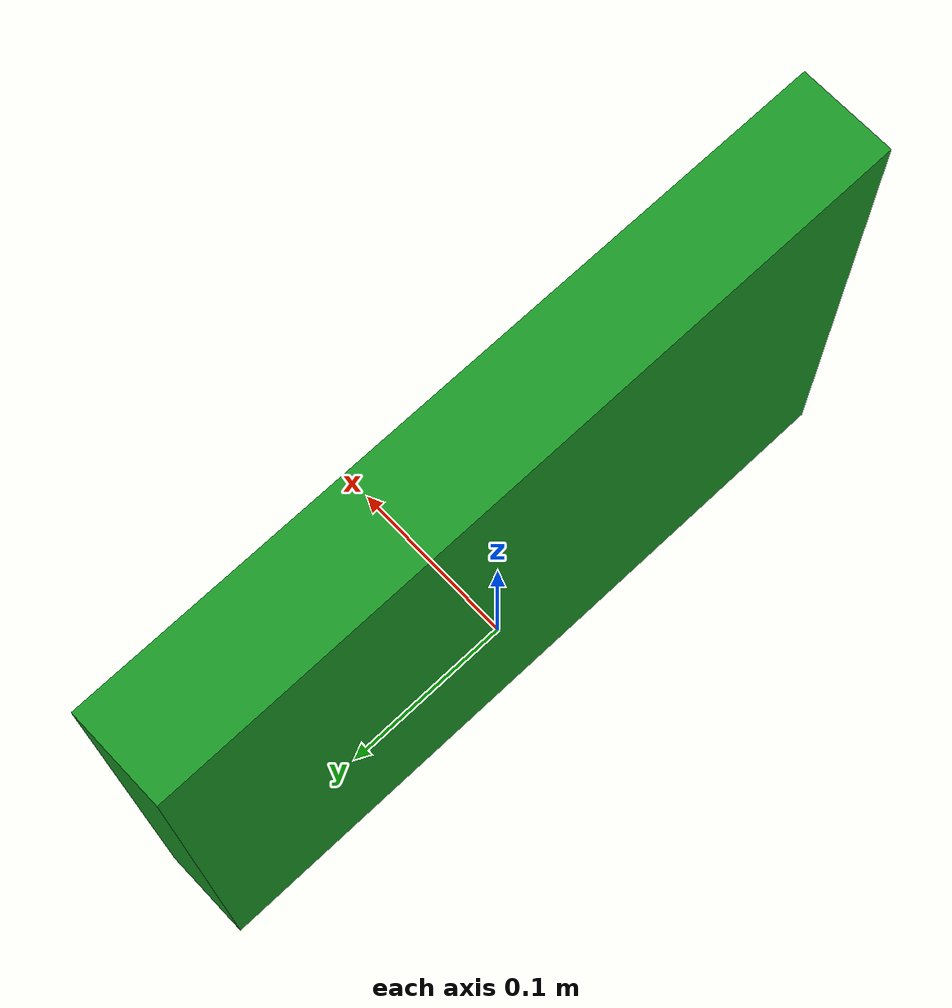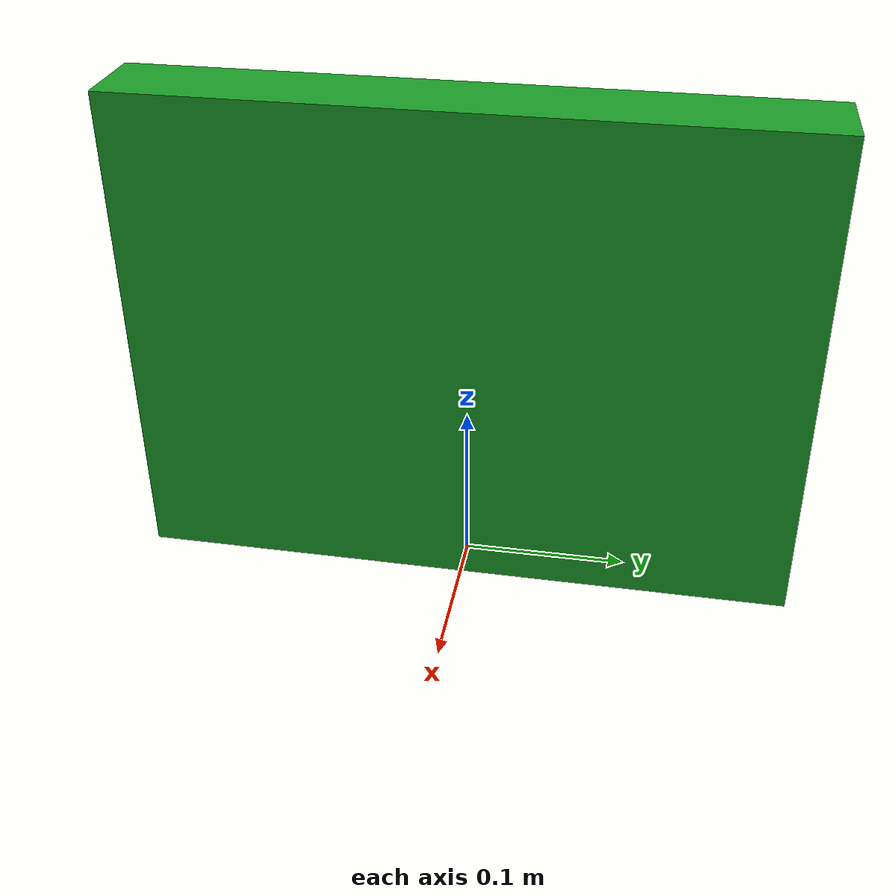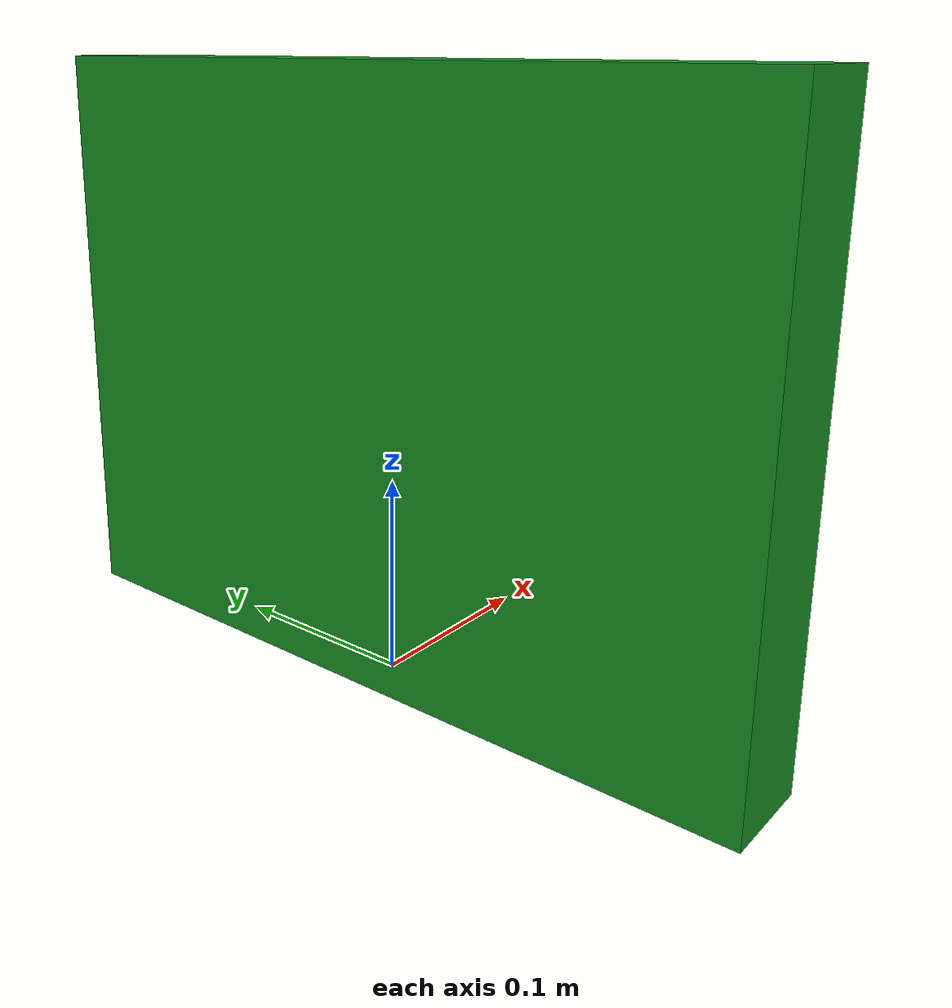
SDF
<?xml version="1.0"?>
<sdf version="1.6">
  <model name="charging_dock">
    <static>true</static>
    <link name="link">
      <collision name="pad_collision">
        <pose>0 0 0.15 0 0 0</pose>
        <geometry>
          <box>
            <size>0.05 0.4 0.3</size>
          </box>
        </geometry>
      </collision>
      <visual name="pad_visual">
        <pose>0 0 0.15 0 0 0</pose>
        <geometry>
          <box>
            <size>0.05 0.4 0.3</size>
          </box>
        </geometry>
        <material>
          <ambient>0.1 0.6 0.15 1</ambient>
          <diffuse>0.1 0.6 0.15 1</diffuse>
          <specular>0.1 0.1 0.1 1</specular>
        </material>
      </visual>
      <sensor name="dock_contact" type="contact">
        <contact>
          <collision>pad_collision</collision>
        </contact>
        <update_rate>30</update_rate>
      </sensor>
    </link>

    <plugin filename="gz-sim-touchplugin-system" name="gz::sim::systems::TouchPlugin">
      <target>turtlebot3_waffle</target>
      <namespace>dock</namespace>
      <time>1.0</time>
      <enabled>true</enabled>
    </plugin>

    <plugin filename="gz-sim-triggered-publisher-system" name="gz::sim::systems::TriggeredPublisher">
      <input type="gz.msgs.Boolean" topic="/dock/touched">
        <match>data: true</match>
      </input>
      <service name="/model/turtlebot3_waffle/battery/linear_battery/recharge/start"
        reqType="gz.msgs.Boolean" repType="gz.msgs.Empty" timeout="1000"
        reqMsg="data: true">
      </service>
    </plugin>

    <plugin filename="gz-sim-triggered-publisher-system" name="gz::sim::systems::TriggeredPublisher">
      <input type="gz.msgs.Boolean" topic="/dock/touched">
        <match>data: true</match>
      </input>
      <delay_ms>90000</delay_ms>
      <service name="/model/turtlebot3_waffle/battery/linear_battery/recharge/stop"
        reqType="gz.msgs.Boolean" repType="gz.msgs.Empty" timeout="1000"
        reqMsg="data: true">
      </service>
      <service name="/dock/enable"
        reqType="gz.msgs.Boolean" repType="gz.msgs.Empty" timeout="1000"
        reqMsg="data: true">
      </service>
    </plugin>
  </model>
</sdf>
